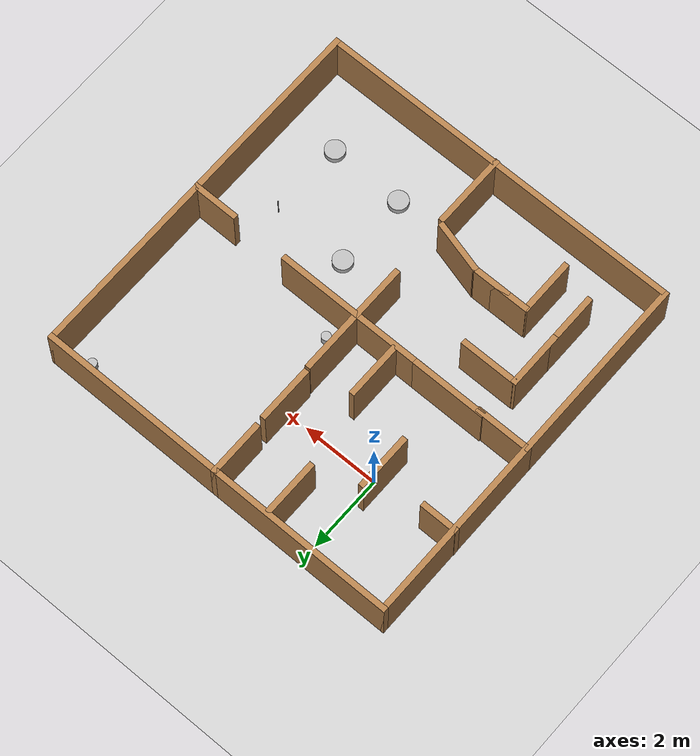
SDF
<sdf version="1.6">
 <world name="default">
  <light name="sun" type="directional">
   <pose>0 0 10 0 -0 0</pose>
   <diffuse>0.8 0.8 0.8 1</diffuse>
   <specular>0.2 0.2 0.2 1</specular>
   <attenuation>
    <range>1000</range>
    <constant>0.9</constant>
    <linear>0.01</linear>
    <quadratic>0.001</quadratic>
   </attenuation>
   <direction>-0.5 0.1 -0.9</direction>
  </light>
  <model name="ground_plane">
   <static>1</static>
   <link name="link">
    <collision name="collision">
     <geometry><plane><normal>0 0 1</normal><size>100 100</size></plane></geometry>
     <surface><friction><ode><mu>100</mu><mu2>50</mu2></ode></friction></surface>
    </collision>
    <visual name="visual">
     <cast_shadows>0</cast_shadows>
     <geometry><plane><normal>0 0 1</normal><size>100 100</size></plane></geometry>
     <material>
      <script><uri>file://media/materials/scripts/gazebo.material</uri><name>Gazebo/Grey</name></script>
     </material>
    </visual>
   </link>
  </model>
  <physics name="default_physics" default="0" type="ode">
   <real_time_update_rate>1000</real_time_update_rate>
   <max_step_size>0.001</max_step_size>
   <real_time_factor>1</real_time_factor>
   <ode>
    <solver>
     <type>quick</type>
     <iters>150</iters>
     <precon_iters>0</precon_iters>
     <sor>1.4</sor>
     <use_dynamic_moi_rescaling>1</use_dynamic_moi_rescaling>
    </solver>
    <constraints>
     <cfm>1e-05</cfm>
     <erp>0.2</erp>
     <contact_max_correcting_vel>2000</contact_max_correcting_vel>
     <contact_surface_layer>0.01</contact_surface_layer>
    </constraints>
   </ode>
  </physics>
  <model name="obstacle_1">
   <pose>6.63441 2.03244 0.124991 0 -0 0</pose>
   <link name="link">
    <collision name="collision">
     <geometry><cylinder><radius>0.12</radius><length>0.25</length></cylinder></geometry>
    </collision>
    <visual name="visual">
     <geometry><cylinder><radius>0.12</radius><length>0.25</length></cylinder></geometry>
    </visual>
    <inertial>
     <inertia><ixx>1</ixx><ixy>0</ixy><ixz>0</ixz><iyy>1</iyy><iyz>0</iyz><izz>1</izz></inertia>
     <mass>1</mass>
    </inertial>
   </link>
  </model>
  <model name="obstacle_2">
   <pose>3.05573 -1.90277 0.124999 0 -0 0</pose>
   <link name="link">
    <collision name="collision">
     <geometry><cylinder><radius>0.12</radius><length>0.25</length></cylinder></geometry>
    </collision>
    <visual name="visual">
     <geometry><cylinder><radius>0.12</radius><length>0.25</length></cylinder></geometry>
    </visual>
    <inertial>
     <inertia><ixx>1</ixx><ixy>0</ixy><ixz>0</ixz><iyy>1</iyy><iyz>0</iyz><izz>1</izz></inertia>
     <mass>1</mass>
    </inertial>
   </link>
   <plugin name="obstacle_2" filename="libobstacle_2.so"/>
  </model>
  <scene><ambient>0.4 0.4 0.4 1</ambient><background>0.7 0.7 0.7 1</background><shadows>1</shadows></scene>
  <gravity>0 0 -9.8</gravity>
  <magnetic_field>6e-06 2.3e-05 -4.2e-05</magnetic_field>
  <atmosphere type="adiabatic"/>
  <spherical_coordinates>
   <surface_model>EARTH_WGS84</surface_model>
   <latitude_deg>0</latitude_deg>
   <longitude_deg>0</longitude_deg>
   <elevation>0</elevation>
   <heading_deg>0</heading_deg>
  </spherical_coordinates>
  <audio><device>default</device></audio>
  <model name="room_4">
   <pose>2.481 -2.4 0 0 -0 0</pose>
   <link name="Wall_0">
    <collision name="Wall_0_Collision">
     <geometry><box><size>5 0.15 1.5</size></box></geometry>
     <pose>0 0 0.75 0 -0 0</pose>
    </collision>
    <visual name="Wall_0_Visual">
     <pose>0 0 0.75 0 -0 0</pose>
     <geometry><box><size>5 0.15 1.5</size></box></geometry>
     <material>
      <script><uri>file://media/materials/scripts/gazebo.material</uri><name>Gazebo/Wood</name></script>
      <ambient>1 1 1 1</ambient>
     </material>
     <meta><layer>0</layer></meta>
    </visual>
    <pose>-2.425 4.86 0 0 -0 0</pose>
   </link>
   <link name="Wall_13">
    <collision name="Wall_13_Collision">
     <geometry><box><size>5 0.15 1.5</size></box></geometry>
     <pose>0 0 0.75 0 -0 0</pose>
    </collision>
    <visual name="Wall_13_Visual">
     <pose>0 0 0.75 0 -0 0</pose>
     <geometry><box><size>5 0.15 1.5</size></box></geometry>
     <material>
      <script><uri>file://media/materials/scripts/gazebo.material</uri><name>Gazebo/Wood</name></script>
      <ambient>1 1 1 1</ambient>
     </material>
     <meta><layer>0</layer></meta>
    </visual>
    <pose>2.425 4.86 0 0 -0 0</pose>
   </link>
   <link name="Wall_15">
    <collision name="Wall_15_Collision">
     <geometry><box><size>5 0.15 1.5</size></box></geometry>
     <pose>0 0 0.75 0 -0 0</pose>
    </collision>
    <visual name="Wall_15_Visual">
     <pose>0 0 0.75 0 -0 0</pose>
     <geometry><box><size>5 0.15 1.5</size></box></geometry>
     <material>
      <script><uri>file://media/materials/scripts/gazebo.material</uri><name>Gazebo/Wood</name></script>
      <ambient>1 1 1 1</ambient>
     </material>
     <meta><layer>0</layer></meta>
    </visual>
    <pose>4.85 2.435 0 0 -0 -1.5708</pose>
   </link>
   <link name="Wall_16">
    <collision name="Wall_16_Collision">
     <geometry><box><size>1.25 0.15 1.5</size></box></geometry>
     <pose>0 0 0.75 0 -0 0</pose>
    </collision>
    <visual name="Wall_16_Visual">
     <pose>0 0 0.75 0 -0 0</pose>
     <geometry><box><size>1.25 0.15 1.5</size></box></geometry>
     <material>
      <script><uri>file://media/materials/scripts/gazebo.material</uri><name>Gazebo/Wood</name></script>
      <ambient>1 1 1 1</ambient>
     </material>
     <meta><layer>0</layer></meta>
    </visual>
    <pose>4.3 0.01 0 0 -0 3.14159</pose>
   </link>
   <link name="Wall_18">
    <collision name="Wall_18_Collision">
     <geometry><box><size>2.25 0.15 1.5</size></box></geometry>
     <pose>0 0 0.75 0 -0 0</pose>
    </collision>
    <visual name="Wall_18_Visual">
     <pose>0 0 0.75 0 -0 0</pose>
     <geometry><box><size>2.25 0.15 1.5</size></box></geometry>
     <material>
      <script><uri>file://media/materials/scripts/gazebo.material</uri><name>Gazebo/Wood</name></script>
      <ambient>1 1 1 1</ambient>
     </material>
     <meta><layer>0</layer></meta>
    </visual>
    <pose>1.107 0.039 0 0 -0 0</pose>
   </link>
   <link name="Wall_20">
    <collision name="Wall_20_Collision">
     <geometry><box><size>1.5 0.15 1.5</size></box></geometry>
     <pose>0 0 0.75 0 -0 0</pose>
    </collision>
    <visual name="Wall_20_Visual">
     <pose>0 0 0.75 0 -0 0</pose>
     <geometry><box><size>1.5 0.15 1.5</size></box></geometry>
     <material>
      <script><uri>file://media/materials/scripts/gazebo.material</uri><name>Gazebo/Wood</name></script>
      <ambient>1 1 1 1</ambient>
     </material>
     <meta><layer>0</layer></meta>
    </visual>
    <pose>0.057 -0.636 0 0 -0 -1.5708</pose>
   </link>
   <link name="Wall_23">
    <collision name="Wall_23_Collision">
     <geometry><box><size>5 0.15 1.5</size></box></geometry>
     <pose>0 0 0.75 0 -0 0</pose>
    </collision>
    <visual name="Wall_23_Visual">
     <pose>0 0 0.75 0 -0 0</pose>
     <geometry><box><size>5 0.15 1.5</size></box></geometry>
     <material>
      <script><uri>file://media/materials/scripts/gazebo.material</uri><name>Gazebo/Wood</name></script>
      <ambient>1 1 1 1</ambient>
     </material>
     <meta><layer>0</layer></meta>
    </visual>
    <pose>-4.85 -2.415 0 0 -0 -1.5708</pose>
   </link>
   <link name="Wall_26">
    <collision name="Wall_26_Collision">
     <geometry><box><size>5 0.15 1.5</size></box></geometry>
     <pose>0 0 0.75 0 -0 0</pose>
    </collision>
    <visual name="Wall_26_Visual">
     <pose>0 0 0.75 0 -0 0</pose>
     <geometry><box><size>5 0.15 1.5</size></box></geometry>
     <material>
      <script><uri>file://media/materials/scripts/gazebo.material</uri><name>Gazebo/Wood</name></script>
      <ambient>1 1 1 1</ambient>
     </material>
     <meta><layer>0</layer></meta>
    </visual>
    <pose>4.85 -2.415 0 0 -0 -1.5708</pose>
   </link>
   <link name="Wall_27">
    <collision name="Wall_27_Collision">
     <geometry><box><size>9.75 0.15 1.5</size></box></geometry>
     <pose>0 0 0.75 0 -0 0</pose>
    </collision>
    <visual name="Wall_27_Visual">
     <pose>0 0 0.75 0 -0 0</pose>
     <geometry><box><size>9.75 0.15 1.5</size></box></geometry>
     <material>
      <script><uri>file://media/materials/scripts/gazebo.material</uri><name>Gazebo/Wood</name></script>
      <ambient>1 1 1 1</ambient>
     </material>
     <meta><layer>0</layer></meta>
    </visual>
    <pose>0.05 -4.84 0 0 -0 3.14159</pose>
   </link>
   <link name="Wall_29">
    <collision name="Wall_29_Collision">
     <geometry><box><size>2 0.15 1.5</size></box></geometry>
     <pose>0 0 0.75 0 -0 0</pose>
    </collision>
    <visual name="Wall_29_Visual">
     <pose>0 0 0.75 0 -0 0</pose>
     <geometry><box><size>2 0.15 1.5</size></box></geometry>
     <material>
      <script><uri>file://media/materials/scripts/gazebo.material</uri><name>Gazebo/Wood</name></script>
      <ambient>1 1 1 1</ambient>
     </material>
     <meta><layer>0</layer></meta>
    </visual>
    <pose>0.102 -3.935 0 0 -0 -1.5708</pose>
   </link>
   <link name="Wall_3">
    <collision name="Wall_3_Collision">
     <geometry><box><size>5 0.15 1.5</size></box></geometry>
     <pose>0 0 0.75 0 -0 0</pose>
    </collision>
    <visual name="Wall_3_Visual">
     <pose>0 0 0.75 0 -0 0</pose>
     <geometry><box><size>5 0.15 1.5</size></box></geometry>
     <material>
      <script><uri>file://media/materials/scripts/gazebo.material</uri><name>Gazebo/Wood</name></script>
      <ambient>1 1 1 1</ambient>
     </material>
     <meta><layer>0</layer></meta>
    </visual>
    <pose>-4.85 2.435 0 0 -0 -1.5708</pose>
   </link>
   <link name="Wall_4">
    <collision name="Wall_4_Collision">
     <geometry><box><size>1.5 0.15 1.5</size></box></geometry>
     <pose>0 0 0.75 0 -0 0</pose>
    </collision>
    <visual name="Wall_4_Visual">
     <pose>0 0 0.75 0 -0 0</pose>
     <geometry><box><size>1.5 0.15 1.5</size></box></geometry>
     <material>
      <script><uri>file://media/materials/scripts/gazebo.material</uri><name>Gazebo/Wood</name></script>
      <ambient>1 1 1 1</ambient>
     </material>
     <meta><layer>0</layer></meta>
    </visual>
    <pose>-4.175 0.01 0 0 -0 0</pose>
   </link>
   <link name="Wall_6">
    <collision name="Wall_6_Collision">
     <geometry><box><size>1.5 0.15 1.5</size></box></geometry>
     <pose>0 0 0.75 0 -0 0</pose>
    </collision>
    <visual name="Wall_6_Visual">
     <pose>0 0 0.75 0 -0 0</pose>
     <geometry><box><size>1.5 0.15 1.5</size></box></geometry>
     <material>
      <script><uri>file://media/materials/scripts/gazebo.material</uri><name>Gazebo/Wood</name></script>
      <ambient>1 1 1 1</ambient>
     </material>
     <meta><layer>0</layer></meta>
    </visual>
    <pose>0 4.185 0 0 -0 -1.5708</pose>
   </link>
   <link name="Wall_8">
    <collision name="Wall_8_Collision">
     <geometry><box><size>2.25 0.15 1.5</size></box></geometry>
     <pose>0 0 0.75 0 -0 0</pose>
    </collision>
    <visual name="Wall_8_Visual">
     <pose>0 0 0.75 0 -0 0</pose>
     <geometry><box><size>2.25 0.15 1.5</size></box></geometry>
     <material>
      <script><uri>file://media/materials/scripts/gazebo.material</uri><name>Gazebo/Wood</name></script>
      <ambient>1 1 1 1</ambient>
     </material>
     <meta><layer>0</layer></meta>
    </visual>
    <pose>-0.993 0.039 0 0 -0 0</pose>
   </link>
   <link name="Wall_9">
    <collision name="Wall_9_Collision">
     <geometry><box><size>1.75 0.15 1.5</size></box></geometry>
     <pose>0 0 0.75 0 -0 0</pose>
    </collision>
    <visual name="Wall_9_Visual">
     <pose>0 0 0.75 0 -0 0</pose>
     <geometry><box><size>1.75 0.15 1.5</size></box></geometry>
     <material>
      <script><uri>file://media/materials/scripts/gazebo.material</uri><name>Gazebo/Wood</name></script>
      <ambient>1 1 1 1</ambient>
     </material>
     <meta><layer>0</layer></meta>
    </visual>
    <pose>0.057 0.839 0 0 -0 1.5708</pose>
   </link>
   <static>1</static>
  </model>
  <model name="woll_h">
   <pose>0.968526 1.69803 0 0 -0 0</pose>
   <link name="Wall_45">
    <collision name="Wall_45_Collision">
     <geometry><box><size>1.5 0.15 1.5</size></box></geometry>
     <pose>0 0 0.75 0 -0 0</pose>
    </collision>
    <visual name="Wall_45_Visual">
     <pose>0 0 0.75 0 -0 0</pose>
     <geometry><box><size>1.5 0.15 1.5</size></box></geometry>
     <material>
      <script><uri>file://media/materials/scripts/gazebo.material</uri><name>Gazebo/Wood</name></script>
      <ambient>1 1 1 1</ambient>
     </material>
     <meta><layer>0</layer></meta>
    </visual>
    <pose>0 0 0 0 -0 1.5708</pose>
   </link>
   <static>1</static>
  </model>
  <model name="woll_h_0">
   <pose>-0.183944 -0.083045 0 0 -0 0</pose>
   <link name="Wall_45">
    <collision name="Wall_45_Collision">
     <geometry><box><size>1.5 0.15 1.5</size></box></geometry>
     <pose>0 0 0.75 0 -0 0</pose>
    </collision>
    <visual name="Wall_45_Visual">
     <pose>0 0 0.75 0 -0 0</pose>
     <geometry><box><size>1.5 0.15 1.5</size></box></geometry>
     <material>
      <script><uri>file://media/materials/scripts/gazebo.material</uri><name>Gazebo/Wood</name></script>
      <ambient>1 1 1 1</ambient>
     </material>
     <meta><layer>0</layer></meta>
    </visual>
    <pose>0 0 0 0 -0 1.5708</pose>
   </link>
   <static>1</static>
  </model>
  <model name="woll_h_1">
   <pose>1.38316 -1.59078 0 0 -0 0</pose>
   <link name="Wall_45">
    <collision name="Wall_45_Collision">
     <geometry><box><size>1.5 0.15 1.5</size></box></geometry>
     <pose>0 0 0.75 0 -0 0</pose>
    </collision>
    <visual name="Wall_45_Visual">
     <pose>0 0 0.75 0 -0 0</pose>
     <geometry><box><size>1.5 0.15 1.5</size></box></geometry>
     <material>
      <script><uri>file://media/materials/scripts/gazebo.material</uri><name>Gazebo/Wood</name></script>
      <ambient>1 1 1 1</ambient>
     </material>
     <meta><layer>0</layer></meta>
    </visual>
    <pose>0 0 0 0 -0 1.5708</pose>
   </link>
   <static>1</static>
  </model>
  <model name="obstacle_2_clone">
   <pose>5.98483 -3.6083 0.238993 -0 2e-06 -1e-06</pose>
   <link name="link">
    <collision name="collision">
     <geometry><cylinder><radius>0.0123226</radius><length>0.660926</length></cylinder></geometry>
    </collision>
    <visual name="visual">
     <geometry><cylinder><radius>0.0123226</radius><length>0.660926</length></cylinder></geometry>
    </visual>
    <inertial>
     <inertia><ixx>1</ixx><ixy>0</ixy><ixz>0</ixz><iyy>1</iyy><iyz>0</iyz><izz>1</izz></inertia>
     <mass>1</mass>
    </inertial>
   </link>
   <plugin name="obstacle_2" filename="libobstacle_2.so"/>
  </model>
  <model name="obstacle_2_clone_clone">
   <pose>5.97678 -5.59406 0.090399 0 -0 0</pose>
   <link name="link">
    <collision name="collision">
     <geometry><cylinder><radius>0.256257</radius><length>0.180802</length></cylinder></geometry>
    </collision>
    <visual name="visual">
     <geometry><cylinder><radius>0.256257</radius><length>0.180802</length></cylinder></geometry>
    </visual>
    <inertial>
     <inertia><ixx>1</ixx><ixy>0</ixy><ixz>0</ixz><iyy>1</iyy><iyz>0</iyz><izz>1</izz></inertia>
     <mass>1</mass>
    </inertial>
   </link>
   <plugin name="obstacle_2" filename="libobstacle_2.so"/>
  </model>
  <model name="obstacle_2_clone_clone_clone">
   <pose>4.01597 -3.59769 0.0904 0 -0 0</pose>
   <link name="link">
    <collision name="collision">
     <geometry><cylinder><radius>0.256257</radius><length>0.180802</length></cylinder></geometry>
    </collision>
    <visual name="visual">
     <geometry><cylinder><radius>0.256257</radius><length>0.180802</length></cylinder></geometry>
    </visual>
    <inertial>
     <inertia><ixx>1</ixx><ixy>0</ixy><ixz>0</ixz><iyy>1</iyy><iyz>0</iyz><izz>1</izz></inertia>
     <mass>1</mass>
    </inertial>
   </link>
   <plugin name="obstacle_2" filename="libobstacle_2.so"/>
  </model>
  <model name="obstacle_2_clone_clone_clone_0">
   <pose>4.02031 -5.56665 0.0904 0 -0 0</pose>
   <link name="link">
    <collision name="collision">
     <geometry><cylinder><radius>0.256257</radius><length>0.180802</length></cylinder></geometry>
    </collision>
    <visual name="visual">
     <geometry><cylinder><radius>0.256257</radius><length>0.180802</length></cylinder></geometry>
    </visual>
    <inertial>
     <inertia><ixx>1</ixx><ixy>0</ixy><ixz>0</ixz><iyy>1</iyy><iyz>0</iyz><izz>1</izz></inertia>
     <mass>1</mass>
    </inertial>
   </link>
   <plugin name="obstacle_2" filename="libobstacle_2.so"/>
  </model>
  <model name="woll_ho_0">
   <pose>-0.41747 -3.42236 0 0 -0 0</pose>
   <link name="Wall_47">
    <collision name="Wall_47_Collision">
     <geometry><box><size>1.5 0.15 1.5</size></box></geometry>
     <pose>0 0 0.75 0 -0 0</pose>
    </collision>
    <visual name="Wall_47_Visual">
     <pose>0 0 0.75 0 -0 0</pose>
     <geometry><box><size>1.5 0.15 1.5</size></box></geometry>
     <material>
      <script><uri>file://media/materials/scripts/gazebo.material</uri><name>Gazebo/Wood</name></script>
      <ambient>1 1 1 1</ambient>
     </material>
     <meta><layer>0</layer></meta>
    </visual>
    <pose>0 0 0 0 -0 3.14159</pose>
   </link>
   <static>1</static>
  </model>
  <model name="woll_h_2">
   <pose>-1.16578 -4.10809 0 0 -0 0</pose>
   <link name="Wall_45">
    <collision name="Wall_45_Collision">
     <geometry><box><size>1.5 0.15 1.5</size></box></geometry>
     <pose>0 0 0.75 0 -0 0</pose>
    </collision>
    <visual name="Wall_45_Visual">
     <pose>0 0 0.75 0 -0 0</pose>
     <geometry><box><size>1.5 0.15 1.5</size></box></geometry>
     <material>
      <script><uri>file://media/materials/scripts/gazebo.material</uri><name>Gazebo/Wood</name></script>
      <ambient>1 1 1 1</ambient>
     </material>
     <meta><layer>0</layer></meta>
    </visual>
    <pose>0 0 0 0 -0 1.5708</pose>
   </link>
   <static>1</static>
  </model>
  <model name="woll_h_3">
   <pose>-1.16654 -5.32005 0 0 -0 0</pose>
   <link name="Wall_45">
    <collision name="Wall_45_Collision">
     <geometry><box><size>1.5 0.15 1.5</size></box></geometry>
     <pose>0 0 0.75 0 -0 0</pose>
    </collision>
    <visual name="Wall_45_Visual">
     <pose>0 0 0.75 0 -0 0</pose>
     <geometry><box><size>1.5 0.15 1.5</size></box></geometry>
     <material>
      <script><uri>file://media/materials/scripts/gazebo.material</uri><name>Gazebo/Wood</name></script>
      <ambient>1 1 1 1</ambient>
     </material>
     <meta><layer>0</layer></meta>
    </visual>
    <pose>0 0 0 0 -0 1.5708</pose>
   </link>
   <static>1</static>
  </model>
  <model name="woll_h_4">
   <pose>-0.241338 -5.62457 0 0 -0 0</pose>
   <link name="Wall_45">
    <collision name="Wall_45_Collision">
     <geometry><box><size>1.5 0.15 1.5</size></box></geometry>
     <pose>0 0 0.75 0 -0 0</pose>
    </collision>
    <visual name="Wall_45_Visual">
     <pose>0 0 0.75 0 -0 0</pose>
     <geometry><box><size>1.5 0.15 1.5</size></box></geometry>
     <material>
      <script><uri>file://media/materials/scripts/gazebo.material</uri><name>Gazebo/Wood</name></script>
      <ambient>1 1 1 1</ambient>
     </material>
     <meta><layer>0</layer></meta>
    </visual>
    <pose>0 0 0 0 -0 1.5708</pose>
   </link>
   <static>1</static>
  </model>
  <model name="wall_v_0">
   <pose>-0.161396 -2.36005 0 0 -0 0</pose>
   <link name="Wall_43">
    <collision name="Wall_43_Collision">
     <geometry><box><size>2 0.15 1.5</size></box></geometry>
     <pose>0 0 0.75 0 -0 0</pose>
    </collision>
    <visual name="Wall_43_Visual">
     <pose>0 0 0.75 0 -0 0</pose>
     <geometry><box><size>2 0.15 1.5</size></box></geometry>
     <material>
      <script><uri>file://media/materials/scripts/gazebo.material</uri><name>Gazebo/Wood</name></script>
      <ambient>1 1 1 1</ambient>
     </material>
     <meta><layer>0</layer></meta>
    </visual>
   </link>
   <static>1</static>
  </model>
  <model name="woll_h_5">
   <pose>2.50383 0.114891 0 0 -0 0</pose>
   <link name="Wall_45">
    <collision name="Wall_45_Collision">
     <geometry><box><size>1.5 0.15 1.5</size></box></geometry>
     <pose>0 0 0.75 0 -0 0</pose>
    </collision>
    <visual name="Wall_45_Visual">
     <pose>0 0 0.75 0 -0 0</pose>
     <geometry><box><size>1.5 0.15 1.5</size></box></geometry>
     <material>
      <script><uri>file://media/materials/scripts/gazebo.material</uri><name>Gazebo/Wood</name></script>
      <ambient>1 1 1 1</ambient>
     </material>
     <meta><layer>0</layer></meta>
    </visual>
    <pose>0 0 0 0 -0 1.5708</pose>
   </link>
   <static>1</static>
  </model>
  <model name="wall_1_v">
   <pose>-1.95207 0.089705 0 0 -0 0</pose>
   <link name="Wall_0">
    <collision name="Wall_0_Collision">
     <geometry><box><size>1 0.15 1.5</size></box></geometry>
     <pose>0 0 0.75 0 -0 0</pose>
    </collision>
    <visual name="Wall_0_Visual">
     <pose>0 0 0.75 0 -0 0</pose>
     <geometry><box><size>1 0.15 1.5</size></box></geometry>
     <material>
      <script><uri>file://media/materials/scripts/gazebo.material</uri><name>Gazebo/Wood</name></script>
      <ambient>1 1 1 1</ambient>
     </material>
     <meta><layer>0</layer></meta>
    </visual>
   </link>
   <static>1</static>
  </model>
  <model name="wall_1_v_0">
   <pose>0.218177 -4.93577 0 0 -0 0</pose>
   <link name="Wall_0">
    <collision name="Wall_0_Collision">
     <geometry><box><size>1 0.15 1.5</size></box></geometry>
     <pose>0 0 0.75 0 -0 0</pose>
    </collision>
    <visual name="Wall_0_Visual">
     <pose>0 0 0.75 0 -0 0</pose>
     <geometry><box><size>1 0.15 1.5</size></box></geometry>
     <material>
      <script><uri>file://media/materials/scripts/gazebo.material</uri><name>Gazebo/Wood</name></script>
      <ambient>1 1 1 1</ambient>
     </material>
     <meta><layer>0</layer></meta>
    </visual>
   </link>
   <static>1</static>
  </model>
  <model name="wall_1_v_1">
   <pose>0.75745 -4.93577 0 0 -0 0</pose>
   <link name="Wall_0">
    <collision name="Wall_0_Collision">
     <geometry><box><size>1 0.15 1.5</size></box></geometry>
     <pose>0 0 0.75 0 -0 0</pose>
    </collision>
    <visual name="Wall_0_Visual">
     <pose>0 0 0.75 0 -0 0</pose>
     <geometry><box><size>1 0.15 1.5</size></box></geometry>
     <material>
      <script><uri>file://media/materials/scripts/gazebo.material</uri><name>Gazebo/Wood</name></script>
      <ambient>1 1 1 1</ambient>
     </material>
     <meta><layer>0</layer></meta>
    </visual>
   </link>
   <static>1</static>
  </model>
  <model name="diagonal_wall">
   <pose>1.87935 -5.11045 0 0 -0 0</pose>
   <link name="Wall_2">
    <collision name="Wall_2_Collision">
     <geometry><box><size>1.4 0.15 1.5</size></box></geometry>
     <pose>0 0 0.75 0 -0 0</pose>
    </collision>
    <visual name="Wall_2_Visual">
     <pose>0 0 0.75 0 -0 0</pose>
     <geometry><box><size>1.4 0.15 1.5</size></box></geometry>
     <material>
      <script><uri>file://media/materials/scripts/gazebo.material</uri><name>Gazebo/Wood</name></script>
      <ambient>1 1 1 1</ambient>
     </material>
     <meta><layer>0</layer></meta>
    </visual>
    <pose>0 0 0 0 -0 2.87953</pose>
   </link>
   <static>1</static>
  </model>
 </world>
</sdf>
